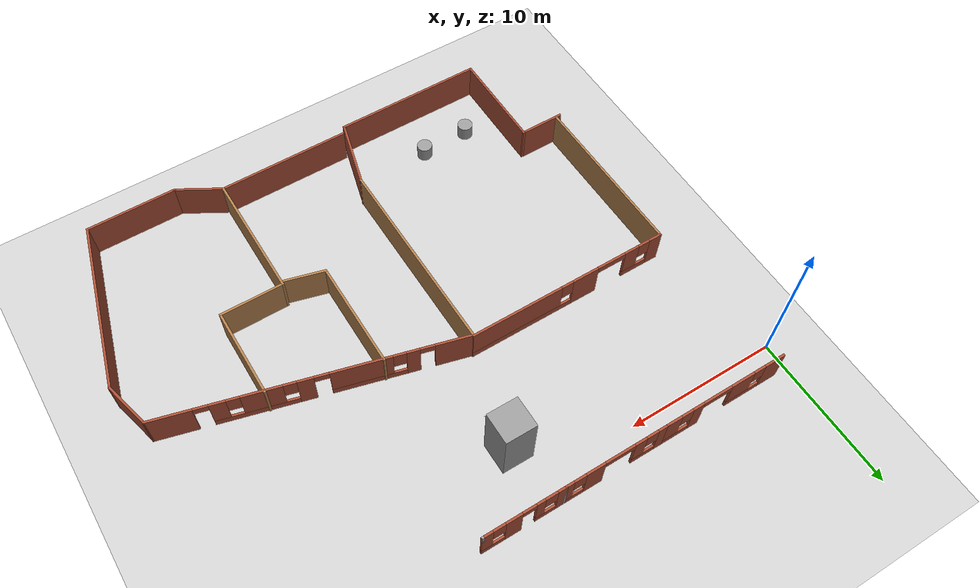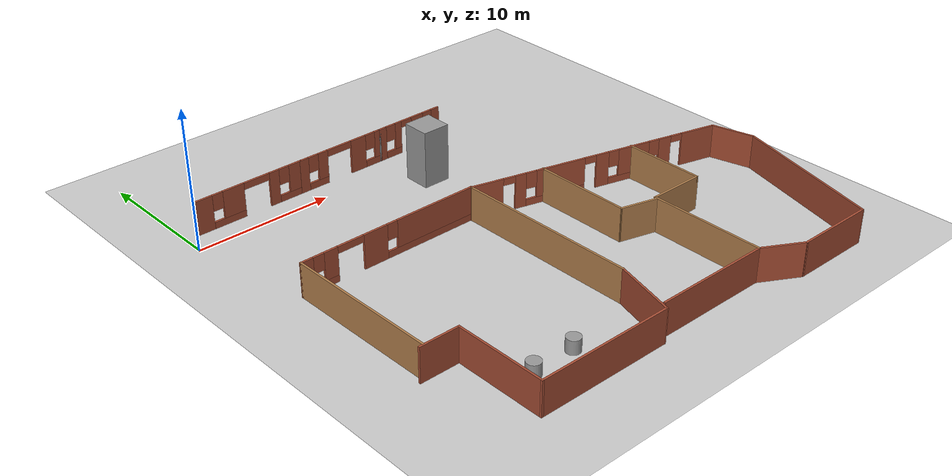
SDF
<sdf version="1.6">
 <world name="default">
  <model name="ground_plane">
   <static>1</static>
   <link name="link">
    <collision name="collision">
     <geometry><plane><normal>0 0 1</normal><size>100 100</size></plane></geometry>
     <surface><friction><ode><mu>100</mu><mu2>50</mu2></ode></friction></surface>
    </collision>
    <visual name="visual">
     <cast_shadows>0</cast_shadows>
     <geometry><plane><normal>0 0 1</normal><size>100 100</size></plane></geometry>
     <material>
      <script><uri>file://media/materials/scripts/gazebo.material</uri><name>Gazebo/Grey</name></script>
     </material>
    </visual>
   </link>
  </model>
  <model name="vital">
   <pose>1.2398 -2.19799 0 0 -0 0</pose>
   <link name="Wall_117">
    <collision name="Wall_117_Collision">
     <geometry><box><size>11.197 0.15 2.5</size></box></geometry>
     <pose>0 0 1.25 0 -0 0</pose>
    </collision>
    <visual name="Wall_117_Visual">
     <pose>0 0 1.25 0 -0 0</pose>
     <geometry><box><size>11.197 0.15 2.5</size></box></geometry>
     <material>
      <script><uri>file://media/materials/scripts/gazebo.material</uri><name>Gazebo/Wood</name></script>
      <ambient>1 1 1 1</ambient>
     </material>
    </visual>
    <pose>0.602983 -12.1831 0 0 0 -1.56111</pose>
   </link>
   <link name="Wall_125">
    <pose>7.34948 -6.60631 0 0 -0 0</pose>
    <visual name="Wall_125_Visual_0">
     <pose>-6.41052 0 1.25 0 -0 0</pose>
     <geometry><box><size>0.928962 0.15 2.5</size></box></geometry>
     <material>
      <script><uri>file://media/materials/scripts/gazebo.material</uri><name>Gazebo/Bricks</name></script>
      <ambient>1 1 1 1</ambient>
     </material>
    </visual>
    <collision name="Wall_125_Collision_0">
     <geometry><box><size>0.928962 0.15 2.5</size></box></geometry>
     <pose>-6.41052 0 1.25 0 -0 0</pose>
    </collision>
    <visual name="Wall_125_Visual_1">
     <pose>-1.17751 0 1.25 0 -0 0</pose>
     <geometry><box><size>1.85483 0.15 2.5</size></box></geometry>
     <material>
      <script><uri>file://media/materials/scripts/gazebo.material</uri><name>Gazebo/Bricks</name></script>
      <ambient>1 1 1 1</ambient>
     </material>
    </visual>
    <collision name="Wall_125_Collision_1">
     <geometry><box><size>1.85483 0.15 2.5</size></box></geometry>
     <pose>-1.17751 0 1.25 0 -0 0</pose>
    </collision>
    <visual name="Wall_125_Visual_2">
     <pose>-5.02548 0 0.25 0 -0 0</pose>
     <geometry><box><size>1.84112 0.15 0.5</size></box></geometry>
     <material>
      <script><uri>file://media/materials/scripts/gazebo.material</uri><name>Gazebo/Bricks</name></script>
      <ambient>1 1 1 1</ambient>
     </material>
    </visual>
    <collision name="Wall_125_Collision_2">
     <geometry><box><size>1.84112 0.15 0.5</size></box></geometry>
     <pose>-5.02548 0 0.25 0 -0 0</pose>
    </collision>
    <visual name="Wall_125_Visual_3">
     <pose>3.31245 0 0.25 0 -0 0</pose>
     <geometry><box><size>7.12509 0.15 0.5</size></box></geometry>
     <material>
      <script><uri>file://media/materials/scripts/gazebo.material</uri><name>Gazebo/Bricks</name></script>
      <ambient>1 1 1 1</ambient>
     </material>
    </visual>
    <collision name="Wall_125_Collision_3">
     <geometry><box><size>7.12509 0.15 0.5</size></box></geometry>
     <pose>3.31245 0 0.25 0 -0 0</pose>
    </collision>
    <visual name="Wall_125_Visual_4">
     <pose>-4.62548 0 1.5 0 -0 0</pose>
     <geometry><box><size>1.04112 0.15 2</size></box></geometry>
     <material>
      <script><uri>file://media/materials/scripts/gazebo.material</uri><name>Gazebo/Bricks</name></script>
      <ambient>1 1 1 1</ambient>
     </material>
    </visual>
    <collision name="Wall_125_Collision_4">
     <geometry><box><size>1.04112 0.15 2</size></box></geometry>
     <pose>-4.62548 0 1.5 0 -0 0</pose>
    </collision>
    <visual name="Wall_125_Visual_5">
     <pose>-4.62548 0 1.5 0 -0 0</pose>
     <geometry><box><size>1.04112 0.15 2</size></box></geometry>
     <material>
      <script><uri>file://media/materials/scripts/gazebo.material</uri><name>Gazebo/Bricks</name></script>
      <ambient>1 1 1 1</ambient>
     </material>
    </visual>
    <collision name="Wall_125_Collision_5">
     <geometry><box><size>1.04112 0.15 2</size></box></geometry>
     <pose>-4.62548 0 1.5 0 -0 0</pose>
    </collision>
    <visual name="Wall_125_Visual_6">
     <pose>3.71245 0 1.5 0 -0 0</pose>
     <geometry><box><size>6.32509 0.15 2</size></box></geometry>
     <material>
      <script><uri>file://media/materials/scripts/gazebo.material</uri><name>Gazebo/Bricks</name></script>
      <ambient>1 1 1 1</ambient>
     </material>
    </visual>
    <collision name="Wall_125_Collision_6">
     <geometry><box><size>6.32509 0.15 2</size></box></geometry>
     <pose>3.71245 0 1.5 0 -0 0</pose>
    </collision>
    <visual name="Wall_125_Visual_7">
     <pose>-5.54604 0 1.9 0 -0 0</pose>
     <geometry><box><size>0.8 0.15 1.2</size></box></geometry>
     <material>
      <script><uri>file://media/materials/scripts/gazebo.material</uri><name>Gazebo/Bricks</name></script>
      <ambient>1 1 1 1</ambient>
     </material>
    </visual>
    <collision name="Wall_125_Collision_7">
     <geometry><box><size>0.8 0.15 1.2</size></box></geometry>
     <pose>-5.54604 0 1.9 0 -0 0</pose>
    </collision>
    <visual name="Wall_125_Visual_8">
     <pose>0.149906 0 1.9 0 -0 0</pose>
     <geometry><box><size>0.8 0.15 1.2</size></box></geometry>
     <material>
      <script><uri>file://media/materials/scripts/gazebo.material</uri><name>Gazebo/Bricks</name></script>
      <ambient>1 1 1 1</ambient>
     </material>
    </visual>
    <collision name="Wall_125_Collision_8">
     <geometry><box><size>0.8 0.15 1.2</size></box></geometry>
     <pose>0.149906 0 1.9 0 -0 0</pose>
    </collision>
    <visual name="Wall_125_Visual_9">
     <pose>-3.10492 0 2.25 0 -0 0</pose>
     <geometry><box><size>2 0.15 0.5</size></box></geometry>
     <material>
      <script><uri>file://media/materials/scripts/gazebo.material</uri><name>Gazebo/Bricks</name></script>
      <ambient>1 1 1 1</ambient>
     </material>
    </visual>
    <collision name="Wall_125_Collision_9">
     <geometry><box><size>2 0.15 0.5</size></box></geometry>
     <pose>-3.10492 0 2.25 0 -0 0</pose>
    </collision>
    <visual name="Wall_125_Visual_10">
     <pose>-3.10492 0 2.25 0 -0 0</pose>
     <geometry><box><size>2 0.15 0.5</size></box></geometry>
     <material>
      <script><uri>file://media/materials/scripts/gazebo.material</uri><name>Gazebo/Bricks</name></script>
      <ambient>1 1 1 1</ambient>
     </material>
    </visual>
    <collision name="Wall_125_Collision_10">
     <geometry><box><size>2 0.15 0.5</size></box></geometry>
     <pose>-3.10492 0 2.25 0 -0 0</pose>
    </collision>
   </link>
   <link name="Wall_126">
    <collision name="Wall_126_Collision">
     <geometry><box><size>13.4469 0.15 2.5</size></box></geometry>
     <pose>0 0 1.25 0 -0 0</pose>
    </collision>
    <visual name="Wall_126_Visual">
     <pose>0 0 1.25 0 -0 0</pose>
     <geometry><box><size>13.4469 0.15 2.5</size></box></geometry>
     <material>
      <script><uri>file://media/materials/scripts/gazebo.material</uri><name>Gazebo/Wood</name></script>
      <ambient>1 1 1 1</ambient>
     </material>
    </visual>
    <pose>14.203 -13.3081 0 0 0 -1.56275</pose>
   </link>
   <link name="Wall_127">
    <collision name="Wall_127_Collision">
     <geometry><box><size>4.75 0.15 2.5</size></box></geometry>
     <pose>0 0 1.25 0 -0 0</pose>
    </collision>
    <visual name="Wall_127_Visual">
     <pose>0 0 1.25 0 -0 0</pose>
     <geometry><box><size>4.75 0.15 2.5</size></box></geometry>
     <material>
      <script><uri>file://media/materials/scripts/gazebo.material</uri><name>Gazebo/Bricks</name></script>
      <ambient>1 1 1 1</ambient>
     </material>
    </visual>
    <pose>13.6612 -22.1779 0 0 0 -1.8326</pose>
   </link>
   <link name="Wall_128">
    <collision name="Wall_128_Collision">
     <geometry><box><size>10 0.15 2.5</size></box></geometry>
     <pose>0 0 1.25 0 -0 0</pose>
    </collision>
    <visual name="Wall_128_Visual">
     <pose>0 0 1.25 0 -0 0</pose>
     <geometry><box><size>10 0.15 2.5</size></box></geometry>
     <material>
      <script><uri>file://media/materials/scripts/gazebo.material</uri><name>Gazebo/Bricks</name></script>
      <ambient>1 1 1 1</ambient>
     </material>
    </visual>
    <pose>8.14092 -24.3996 0 0 -0 3.14159</pose>
   </link>
   <link name="Wall_129">
    <collision name="Wall_129_Collision">
     <geometry><box><size>6.75 0.15 2.5</size></box></geometry>
     <pose>0 0 1.25 0 -0 0</pose>
    </collision>
    <visual name="Wall_129_Visual">
     <pose>0 0 1.25 0 -0 0</pose>
     <geometry><box><size>6.75 0.15 2.5</size></box></geometry>
     <material>
      <script><uri>file://media/materials/scripts/gazebo.material</uri><name>Gazebo/Bricks</name></script>
      <ambient>1 1 1 1</ambient>
     </material>
    </visual>
    <pose>3.21592 -21.0996 0 0 -0 1.5708</pose>
   </link>
   <link name="Wall_130">
    <collision name="Wall_130_Collision">
     <geometry><box><size>3 0.15 2.5</size></box></geometry>
     <pose>0 0 1.25 0 -0 0</pose>
    </collision>
    <visual name="Wall_130_Visual">
     <pose>0 0 1.25 0 -0 0</pose>
     <geometry><box><size>3 0.15 2.5</size></box></geometry>
     <material>
      <script><uri>file://media/materials/scripts/gazebo.material</uri><name>Gazebo/Bricks</name></script>
      <ambient>1 1 1 1</ambient>
     </material>
    </visual>
    <pose>1.79092 -17.7996 0 0 -0 3.14159</pose>
   </link>
   <link name="Wall_132">
    <pose>23.4276 -9.10478 0 0 0 -0.257663</pose>
    <visual name="Wall_132_Visual_0">
     <pose>-8.46456 0 1.25 0 -0 0</pose>
     <geometry><box><size>2.41055 0.15 2.5</size></box></geometry>
     <material>
      <script><uri>file://media/materials/scripts/gazebo.material</uri><name>Gazebo/Bricks</name></script>
      <ambient>1 1 1 1</ambient>
     </material>
    </visual>
    <collision name="Wall_132_Collision_0">
     <geometry><box><size>2.41055 0.15 2.5</size></box></geometry>
     <pose>-8.46456 0 1.25 0 -0 0</pose>
    </collision>
    <visual name="Wall_132_Visual_1">
     <pose>-5.94773 0 1.25 0 -0 0</pose>
     <geometry><box><size>0.823107 0.15 2.5</size></box></geometry>
     <material>
      <script><uri>file://media/materials/scripts/gazebo.material</uri><name>Gazebo/Bricks</name></script>
      <ambient>1 1 1 1</ambient>
     </material>
    </visual>
    <collision name="Wall_132_Collision_1">
     <geometry><box><size>0.823107 0.15 2.5</size></box></geometry>
     <pose>-5.94773 0 1.25 0 -0 0</pose>
    </collision>
    <visual name="Wall_132_Visual_2">
     <pose>0.434489 0 1.25 0 -0 0</pose>
     <geometry><box><size>1.00547 0.15 2.5</size></box></geometry>
     <material>
      <script><uri>file://media/materials/scripts/gazebo.material</uri><name>Gazebo/Bricks</name></script>
      <ambient>1 1 1 1</ambient>
     </material>
    </visual>
    <collision name="Wall_132_Collision_2">
     <geometry><box><size>1.00547 0.15 2.5</size></box></geometry>
     <pose>0.434489 0 1.25 0 -0 0</pose>
    </collision>
    <visual name="Wall_132_Visual_3">
     <pose>8.28604 0 1.25 0 -0 0</pose>
     <geometry><box><size>2.76759 0.15 2.5</size></box></geometry>
     <material>
      <script><uri>file://media/materials/scripts/gazebo.material</uri><name>Gazebo/Bricks</name></script>
      <ambient>1 1 1 1</ambient>
     </material>
    </visual>
    <collision name="Wall_132_Collision_3">
     <geometry><box><size>2.76759 0.15 2.5</size></box></geometry>
     <pose>8.28604 0 1.25 0 -0 0</pose>
    </collision>
    <visual name="Wall_132_Visual_4">
     <pose>-3.25221 0 0.25 0 -0 0</pose>
     <geometry><box><size>4.56793 0.15 0.5</size></box></geometry>
     <material>
      <script><uri>file://media/materials/scripts/gazebo.material</uri><name>Gazebo/Bricks</name></script>
      <ambient>1 1 1 1</ambient>
     </material>
    </visual>
    <collision name="Wall_132_Collision_4">
     <geometry><box><size>4.56793 0.15 0.5</size></box></geometry>
     <pose>-3.25221 0 0.25 0 -0 0</pose>
    </collision>
    <visual name="Wall_132_Visual_5">
     <pose>3.46974 0 0.25 0 -0 0</pose>
     <geometry><box><size>5.06503 0.15 0.5</size></box></geometry>
     <material>
      <script><uri>file://media/materials/scripts/gazebo.material</uri><name>Gazebo/Bricks</name></script>
      <ambient>1 1 1 1</ambient>
     </material>
    </visual>
    <collision name="Wall_132_Collision_5">
     <geometry><box><size>5.06503 0.15 0.5</size></box></geometry>
     <pose>3.46974 0 0.25 0 -0 0</pose>
    </collision>
    <visual name="Wall_132_Visual_6">
     <pose>-2.85221 0 1.5 0 -0 0</pose>
     <geometry><box><size>3.76793 0.15 2</size></box></geometry>
     <material>
      <script><uri>file://media/materials/scripts/gazebo.material</uri><name>Gazebo/Bricks</name></script>
      <ambient>1 1 1 1</ambient>
     </material>
    </visual>
    <collision name="Wall_132_Collision_6">
     <geometry><box><size>3.76793 0.15 2</size></box></geometry>
     <pose>-2.85221 0 1.5 0 -0 0</pose>
    </collision>
    <visual name="Wall_132_Visual_7">
     <pose>-2.85221 0 1.5 0 -0 0</pose>
     <geometry><box><size>3.76793 0.15 2</size></box></geometry>
     <material>
      <script><uri>file://media/materials/scripts/gazebo.material</uri><name>Gazebo/Bricks</name></script>
      <ambient>1 1 1 1</ambient>
     </material>
    </visual>
    <collision name="Wall_132_Collision_7">
     <geometry><box><size>3.76793 0.15 2</size></box></geometry>
     <pose>-2.85221 0 1.5 0 -0 0</pose>
    </collision>
    <visual name="Wall_132_Visual_8">
     <pose>2.97524 0 1.5 0 -0 0</pose>
     <geometry><box><size>2.47604 0.15 2</size></box></geometry>
     <material>
      <script><uri>file://media/materials/scripts/gazebo.material</uri><name>Gazebo/Bricks</name></script>
      <ambient>1 1 1 1</ambient>
     </material>
    </visual>
    <collision name="Wall_132_Collision_8">
     <geometry><box><size>2.47604 0.15 2</size></box></geometry>
     <pose>2.97524 0 1.5 0 -0 0</pose>
    </collision>
    <visual name="Wall_132_Visual_9">
     <pose>5.50776 0 1.5 0 -0 0</pose>
     <geometry><box><size>0.988987 0.15 2</size></box></geometry>
     <material>
      <script><uri>file://media/materials/scripts/gazebo.material</uri><name>Gazebo/Bricks</name></script>
      <ambient>1 1 1 1</ambient>
     </material>
    </visual>
    <collision name="Wall_132_Collision_9">
     <geometry><box><size>0.988987 0.15 2</size></box></geometry>
     <pose>5.50776 0 1.5 0 -0 0</pose>
    </collision>
    <visual name="Wall_132_Visual_10">
     <pose>-5.13618 0 1.9 0 -0 0</pose>
     <geometry><box><size>0.8 0.15 1.2</size></box></geometry>
     <material>
      <script><uri>file://media/materials/scripts/gazebo.material</uri><name>Gazebo/Bricks</name></script>
      <ambient>1 1 1 1</ambient>
     </material>
    </visual>
    <collision name="Wall_132_Collision_10">
     <geometry><box><size>0.8 0.15 1.2</size></box></geometry>
     <pose>-5.13618 0 1.9 0 -0 0</pose>
    </collision>
    <visual name="Wall_132_Visual_11">
     <pose>1.33722 0 1.9 0 -0 0</pose>
     <geometry><box><size>0.8 0.15 1.2</size></box></geometry>
     <material>
      <script><uri>file://media/materials/scripts/gazebo.material</uri><name>Gazebo/Bricks</name></script>
      <ambient>1 1 1 1</ambient>
     </material>
    </visual>
    <collision name="Wall_132_Collision_11">
     <geometry><box><size>0.8 0.15 1.2</size></box></geometry>
     <pose>1.33722 0 1.9 0 -0 0</pose>
    </collision>
    <visual name="Wall_132_Visual_12">
     <pose>4.61326 0 1.9 0 -0 0</pose>
     <geometry><box><size>0.8 0.15 1.2</size></box></geometry>
     <material>
      <script><uri>file://media/materials/scripts/gazebo.material</uri><name>Gazebo/Bricks</name></script>
      <ambient>1 1 1 1</ambient>
     </material>
    </visual>
    <collision name="Wall_132_Collision_12">
     <geometry><box><size>0.8 0.15 1.2</size></box></geometry>
     <pose>4.61326 0 1.9 0 -0 0</pose>
    </collision>
    <visual name="Wall_132_Visual_13">
     <pose>-6.80929 0 2.25 0 -0 0</pose>
     <geometry><box><size>0.9 0.15 0.5</size></box></geometry>
     <material>
      <script><uri>file://media/materials/scripts/gazebo.material</uri><name>Gazebo/Bricks</name></script>
      <ambient>1 1 1 1</ambient>
     </material>
    </visual>
    <collision name="Wall_132_Collision_13">
     <geometry><box><size>0.9 0.15 0.5</size></box></geometry>
     <pose>-6.80929 0 2.25 0 -0 0</pose>
    </collision>
    <visual name="Wall_132_Visual_14">
     <pose>-0.518245 0 2.25 0 -0 0</pose>
     <geometry><box><size>0.9 0.15 0.5</size></box></geometry>
     <material>
      <script><uri>file://media/materials/scripts/gazebo.material</uri><name>Gazebo/Bricks</name></script>
      <ambient>1 1 1 1</ambient>
     </material>
    </visual>
    <collision name="Wall_132_Collision_14">
     <geometry><box><size>0.9 0.15 0.5</size></box></geometry>
     <pose>-0.518245 0 2.25 0 -0 0</pose>
    </collision>
    <visual name="Wall_132_Visual_15">
     <pose>-0.518245 0 2.25 0 -0 0</pose>
     <geometry><box><size>0.9 0.15 0.5</size></box></geometry>
     <material>
      <script><uri>file://media/materials/scripts/gazebo.material</uri><name>Gazebo/Bricks</name></script>
      <ambient>1 1 1 1</ambient>
     </material>
    </visual>
    <collision name="Wall_132_Collision_15">
     <geometry><box><size>0.9 0.15 0.5</size></box></geometry>
     <pose>-0.518245 0 2.25 0 -0 0</pose>
    </collision>
    <visual name="Wall_132_Visual_16">
     <pose>6.45225 0 2.25 0 -0 0</pose>
     <geometry><box><size>0.9 0.15 0.5</size></box></geometry>
     <material>
      <script><uri>file://media/materials/scripts/gazebo.material</uri><name>Gazebo/Bricks</name></script>
      <ambient>1 1 1 1</ambient>
     </material>
    </visual>
    <collision name="Wall_132_Collision_16">
     <geometry><box><size>0.9 0.15 0.5</size></box></geometry>
     <pose>6.45225 0 2.25 0 -0 0</pose>
    </collision>
   </link>
   <link name="Wall_133">
    <collision name="Wall_133_Collision">
     <geometry><box><size>3.25 0.15 2.5</size></box></geometry>
     <pose>0 0 1.25 0 -0 0</pose>
    </collision>
    <visual name="Wall_133_Visual">
     <pose>0 0 1.25 0 -0 0</pose>
     <geometry><box><size>3.25 0.15 2.5</size></box></geometry>
     <material>
      <script><uri>file://media/materials/scripts/gazebo.material</uri><name>Gazebo/Bricks</name></script>
      <ambient>1 1 1 1</ambient>
     </material>
    </visual>
    <pose>33.1068 -13.0469 0 0 0 -1.309</pose>
   </link>
   <link name="Wall_134">
    <collision name="Wall_134_Collision">
     <geometry><box><size>11.5 0.15 2.5</size></box></geometry>
     <pose>0 0 1.25 0 -0 0</pose>
    </collision>
    <visual name="Wall_134_Visual">
     <pose>0 0 1.25 0 -0 0</pose>
     <geometry><box><size>11.5 0.15 2.5</size></box></geometry>
     <material>
      <script><uri>file://media/materials/scripts/gazebo.material</uri><name>Gazebo/Bricks</name></script>
      <ambient>1 1 1 1</ambient>
     </material>
    </visual>
    <pose>32.0392 -20.0257 0 0 0 -1.8326</pose>
   </link>
   <link name="Wall_135">
    <collision name="Wall_135_Collision">
     <geometry><box><size>6 0.15 2.5</size></box></geometry>
     <pose>0 0 1.25 0 -0 0</pose>
    </collision>
    <visual name="Wall_135_Visual">
     <pose>0 0 1.25 0 -0 0</pose>
     <geometry><box><size>6 0.15 2.5</size></box></geometry>
     <material>
      <script><uri>file://media/materials/scripts/gazebo.material</uri><name>Gazebo/Bricks</name></script>
      <ambient>1 1 1 1</ambient>
     </material>
    </visual>
    <pose>27.6454 -25.5074 0 0 -0 3.14159</pose>
   </link>
   <link name="Wall_136">
    <collision name="Wall_136_Collision">
     <geometry><box><size>3.25 0.15 2.5</size></box></geometry>
     <pose>0 0 1.25 0 -0 0</pose>
    </collision>
    <visual name="Wall_136_Visual">
     <pose>0 0 1.25 0 -0 0</pose>
     <geometry><box><size>3.25 0.15 2.5</size></box></geometry>
     <material>
      <script><uri>file://media/materials/scripts/gazebo.material</uri><name>Gazebo/Bricks</name></script>
      <ambient>1 1 1 1</ambient>
     </material>
    </visual>
    <pose>23.3781 -24.7324 0 0 -0 2.61799</pose>
   </link>
   <link name="Wall_137">
    <collision name="Wall_137_Collision">
     <geometry><box><size>8.5 0.15 2.5</size></box></geometry>
     <pose>0 0 1.25 0 -0 0</pose>
    </collision>
    <visual name="Wall_137_Visual">
     <pose>0 0 1.25 0 -0 0</pose>
     <geometry><box><size>8.5 0.15 2.5</size></box></geometry>
     <material>
      <script><uri>file://media/materials/scripts/gazebo.material</uri><name>Gazebo/Wood</name></script>
      <ambient>1 1 1 1</ambient>
     </material>
    </visual>
    <pose>22.0357 -19.7824 0 0 -0 1.5708</pose>
   </link>
   <link name="Wall_138">
    <collision name="Wall_138_Collision">
     <geometry><box><size>4.25 0.15 2.5</size></box></geometry>
     <pose>0 0 1.25 0 -0 0</pose>
    </collision>
    <visual name="Wall_138_Visual">
     <pose>0 0 1.25 0 -0 0</pose>
     <geometry><box><size>4.25 0.15 2.5</size></box></geometry>
     <material>
      <script><uri>file://media/materials/scripts/gazebo.material</uri><name>Gazebo/Wood</name></script>
      <ambient>1 1 1 1</ambient>
     </material>
    </visual>
    <pose>24.0857 -15.6074 0 0 -0 0</pose>
   </link>
   <link name="Wall_139">
    <collision name="Wall_139_Collision">
     <geometry><box><size>6 0.15 2.5</size></box></geometry>
     <pose>0 0 1.25 0 -0 0</pose>
    </collision>
    <visual name="Wall_139_Visual">
     <pose>0 0 1.25 0 -0 0</pose>
     <geometry><box><size>6 0.15 2.5</size></box></geometry>
     <material>
      <script><uri>file://media/materials/scripts/gazebo.material</uri><name>Gazebo/Wood</name></script>
      <ambient>1 1 1 1</ambient>
     </material>
    </visual>
    <pose>26.1357 -12.6824 0 0 -0 1.5708</pose>
   </link>
   <link name="Wall_141">
    <collision name="Wall_141_Collision">
     <geometry><box><size>7.25 0.15 2.5</size></box></geometry>
     <pose>0 0 1.25 0 -0 0</pose>
    </collision>
    <visual name="Wall_141_Visual">
     <pose>0 0 1.25 0 -0 0</pose>
     <geometry><box><size>7.25 0.15 2.5</size></box></geometry>
     <material>
      <script><uri>file://media/materials/scripts/gazebo.material</uri><name>Gazebo/Wood</name></script>
      <ambient>1 1 1 1</ambient>
     </material>
    </visual>
    <pose>19.3863 -11.5458 0 0 0 -1.5708</pose>
   </link>
   <link name="Wall_142">
    <collision name="Wall_142_Collision">
     <geometry><box><size>2.75 0.15 2.5</size></box></geometry>
     <pose>0 0 1.25 0 -0 0</pose>
    </collision>
    <visual name="Wall_142_Visual">
     <pose>0 0 1.25 0 -0 0</pose>
     <geometry><box><size>2.75 0.15 2.5</size></box></geometry>
     <material>
      <script><uri>file://media/materials/scripts/gazebo.material</uri><name>Gazebo/Wood</name></script>
      <ambient>1 1 1 1</ambient>
     </material>
    </visual>
    <pose>20.642 -15.4323 0 0 0 -0.261799</pose>
   </link>
   <link name="Wall_144">
    <collision name="Wall_144_Collision">
     <geometry><box><size>8.75 0.15 2.5</size></box></geometry>
     <pose>0 0 1.25 0 -0 0</pose>
    </collision>
    <visual name="Wall_144_Visual">
     <pose>0 0 1.25 0 -0 0</pose>
     <geometry><box><size>8.75 0.15 2.5</size></box></geometry>
     <material>
      <script><uri>file://media/materials/scripts/gazebo.material</uri><name>Gazebo/Bricks</name></script>
      <ambient>1 1 1 1</ambient>
     </material>
    </visual>
    <pose>17.7357 -23.9574 0 0 -0 3.14159</pose>
   </link>
   <link name="Wall_64">
    <pose>3.81101 3.83144 0 0 -0 0</pose>
    <visual name="Wall_64_Visual_0">
     <pose>-3.53221 0 1.25 0 -0 0</pose>
     <geometry><box><size>1.43558 0.15 2.5</size></box></geometry>
     <material>
      <script><uri>file://media/materials/scripts/gazebo.material</uri><name>Gazebo/Bricks</name></script>
      <ambient>1 1 1 1</ambient>
     </material>
    </visual>
    <collision name="Wall_64_Collision_0">
     <geometry><box><size>1.43558 0.15 2.5</size></box></geometry>
     <pose>-3.53221 0 1.25 0 -0 0</pose>
    </collision>
    <visual name="Wall_64_Visual_1">
     <pose>2.011 0 1.25 0 -0 0</pose>
     <geometry><box><size>0.764597 0.15 2.5</size></box></geometry>
     <material>
      <script><uri>file://media/materials/scripts/gazebo.material</uri><name>Gazebo/Bricks</name></script>
      <ambient>1 1 1 1</ambient>
     </material>
    </visual>
    <collision name="Wall_64_Collision_1">
     <geometry><box><size>0.764597 0.15 2.5</size></box></geometry>
     <pose>2.011 0 1.25 0 -0 0</pose>
    </collision>
    <visual name="Wall_64_Visual_2">
     <pose>-1.59286 0 0.25 0 -0 0</pose>
     <geometry><box><size>2.44312 0.15 0.5</size></box></geometry>
     <material>
      <script><uri>file://media/materials/scripts/gazebo.material</uri><name>Gazebo/Bricks</name></script>
      <ambient>1 1 1 1</ambient>
     </material>
    </visual>
    <collision name="Wall_64_Collision_2">
     <geometry><box><size>2.44312 0.15 0.5</size></box></geometry>
     <pose>-1.59286 0 0.25 0 -0 0</pose>
    </collision>
    <visual name="Wall_64_Visual_3">
     <pose>3.32165 0 0.25 0 -0 0</pose>
     <geometry><box><size>1.8567 0.15 0.5</size></box></geometry>
     <material>
      <script><uri>file://media/materials/scripts/gazebo.material</uri><name>Gazebo/Bricks</name></script>
      <ambient>1 1 1 1</ambient>
     </material>
    </visual>
    <collision name="Wall_64_Collision_3">
     <geometry><box><size>1.8567 0.15 0.5</size></box></geometry>
     <pose>3.32165 0 0.25 0 -0 0</pose>
    </collision>
    <visual name="Wall_64_Visual_4">
     <pose>-1.19286 0 1.5 0 -0 0</pose>
     <geometry><box><size>1.64312 0.15 2</size></box></geometry>
     <material>
      <script><uri>file://media/materials/scripts/gazebo.material</uri><name>Gazebo/Bricks</name></script>
      <ambient>1 1 1 1</ambient>
     </material>
    </visual>
    <collision name="Wall_64_Collision_4">
     <geometry><box><size>1.64312 0.15 2</size></box></geometry>
     <pose>-1.19286 0 1.5 0 -0 0</pose>
    </collision>
    <visual name="Wall_64_Visual_5">
     <pose>-1.19286 0 1.5 0 -0 0</pose>
     <geometry><box><size>1.64312 0.15 2</size></box></geometry>
     <material>
      <script><uri>file://media/materials/scripts/gazebo.material</uri><name>Gazebo/Bricks</name></script>
      <ambient>1 1 1 1</ambient>
     </material>
    </visual>
    <collision name="Wall_64_Collision_5">
     <geometry><box><size>1.64312 0.15 2</size></box></geometry>
     <pose>-1.19286 0 1.5 0 -0 0</pose>
    </collision>
    <visual name="Wall_64_Visual_6">
     <pose>3.72165 0 1.5 0 -0 0</pose>
     <geometry><box><size>1.0567 0.15 2</size></box></geometry>
     <material>
      <script><uri>file://media/materials/scripts/gazebo.material</uri><name>Gazebo/Bricks</name></script>
      <ambient>1 1 1 1</ambient>
     </material>
    </visual>
    <collision name="Wall_64_Collision_6">
     <geometry><box><size>1.0567 0.15 2</size></box></geometry>
     <pose>3.72165 0 1.5 0 -0 0</pose>
    </collision>
    <visual name="Wall_64_Visual_7">
     <pose>-2.41442 0 1.9 0 -0 0</pose>
     <geometry><box><size>0.8 0.15 1.2</size></box></geometry>
     <material>
      <script><uri>file://media/materials/scripts/gazebo.material</uri><name>Gazebo/Bricks</name></script>
      <ambient>1 1 1 1</ambient>
     </material>
    </visual>
    <collision name="Wall_64_Collision_7">
     <geometry><box><size>0.8 0.15 1.2</size></box></geometry>
     <pose>-2.41442 0 1.9 0 -0 0</pose>
    </collision>
    <visual name="Wall_64_Visual_8">
     <pose>2.7933 0 1.9 0 -0 0</pose>
     <geometry><box><size>0.8 0.15 1.2</size></box></geometry>
     <material>
      <script><uri>file://media/materials/scripts/gazebo.material</uri><name>Gazebo/Bricks</name></script>
      <ambient>1 1 1 1</ambient>
     </material>
    </visual>
    <collision name="Wall_64_Collision_8">
     <geometry><box><size>0.8 0.15 1.2</size></box></geometry>
     <pose>2.7933 0 1.9 0 -0 0</pose>
    </collision>
    <visual name="Wall_64_Visual_9">
     <pose>0.6287 0 2.25 0 -0 0</pose>
     <geometry><box><size>2 0.15 0.5</size></box></geometry>
     <material>
      <script><uri>file://media/materials/scripts/gazebo.material</uri><name>Gazebo/Bricks</name></script>
      <ambient>1 1 1 1</ambient>
     </material>
    </visual>
    <collision name="Wall_64_Collision_9">
     <geometry><box><size>2 0.15 0.5</size></box></geometry>
     <pose>0.6287 0 2.25 0 -0 0</pose>
    </collision>
    <visual name="Wall_64_Visual_10">
     <pose>0.6287 0 2.25 0 -0 0</pose>
     <geometry><box><size>2 0.15 0.5</size></box></geometry>
     <material>
      <script><uri>file://media/materials/scripts/gazebo.material</uri><name>Gazebo/Bricks</name></script>
      <ambient>1 1 1 1</ambient>
     </material>
    </visual>
    <collision name="Wall_64_Collision_10">
     <geometry><box><size>2 0.15 0.5</size></box></geometry>
     <pose>0.6287 0 2.25 0 -0 0</pose>
    </collision>
   </link>
   <link name="Wall_72">
    <pose>11.411 3.83144 0 0 -0 0</pose>
    <visual name="Wall_72_Visual_0">
     <pose>-3.13279 0 1.25 0 -0 0</pose>
     <geometry><box><size>0.734415 0.15 2.5</size></box></geometry>
     <material>
      <script><uri>file://media/materials/scripts/gazebo.material</uri><name>Gazebo/Bricks</name></script>
      <ambient>1 1 1 1</ambient>
     </material>
    </visual>
    <collision name="Wall_72_Collision_0">
     <geometry><box><size>0.734415 0.15 2.5</size></box></geometry>
     <pose>-3.13279 0 1.25 0 -0 0</pose>
    </collision>
    <visual name="Wall_72_Visual_1">
     <pose>1.47853 0 1.25 0 -0 0</pose>
     <geometry><box><size>1.27624 0.15 2.5</size></box></geometry>
     <material>
      <script><uri>file://media/materials/scripts/gazebo.material</uri><name>Gazebo/Bricks</name></script>
      <ambient>1 1 1 1</ambient>
     </material>
    </visual>
    <collision name="Wall_72_Collision_1">
     <geometry><box><size>1.27624 0.15 2.5</size></box></geometry>
     <pose>1.47853 0 1.25 0 -0 0</pose>
    </collision>
    <visual name="Wall_72_Visual_2">
     <pose>-1.96259 0 0.25 0 -0 0</pose>
     <geometry><box><size>1.606 0.15 0.5</size></box></geometry>
     <material>
      <script><uri>file://media/materials/scripts/gazebo.material</uri><name>Gazebo/Bricks</name></script>
      <ambient>1 1 1 1</ambient>
     </material>
    </visual>
    <collision name="Wall_72_Collision_2">
     <geometry><box><size>1.606 0.15 0.5</size></box></geometry>
     <pose>-1.96259 0 0.25 0 -0 0</pose>
    </collision>
    <visual name="Wall_72_Visual_3">
     <pose>2.80833 0 0.25 0 -0 0</pose>
     <geometry><box><size>1.38335 0.15 0.5</size></box></geometry>
     <material>
      <script><uri>file://media/materials/scripts/gazebo.material</uri><name>Gazebo/Bricks</name></script>
      <ambient>1 1 1 1</ambient>
     </material>
    </visual>
    <collision name="Wall_72_Collision_3">
     <geometry><box><size>1.38335 0.15 0.5</size></box></geometry>
     <pose>2.80833 0 0.25 0 -0 0</pose>
    </collision>
    <visual name="Wall_72_Visual_4">
     <pose>-1.56259 0 1.5 0 -0 0</pose>
     <geometry><box><size>0.805997 0.15 2</size></box></geometry>
     <material>
      <script><uri>file://media/materials/scripts/gazebo.material</uri><name>Gazebo/Bricks</name></script>
      <ambient>1 1 1 1</ambient>
     </material>
    </visual>
    <collision name="Wall_72_Collision_4">
     <geometry><box><size>0.805997 0.15 2</size></box></geometry>
     <pose>-1.56259 0 1.5 0 -0 0</pose>
    </collision>
    <visual name="Wall_72_Visual_5">
     <pose>-1.56259 0 1.5 0 -0 0</pose>
     <geometry><box><size>0.805997 0.15 2</size></box></geometry>
     <material>
      <script><uri>file://media/materials/scripts/gazebo.material</uri><name>Gazebo/Bricks</name></script>
      <ambient>1 1 1 1</ambient>
     </material>
    </visual>
    <collision name="Wall_72_Collision_5">
     <geometry><box><size>0.805997 0.15 2</size></box></geometry>
     <pose>-1.56259 0 1.5 0 -0 0</pose>
    </collision>
    <visual name="Wall_72_Visual_6">
     <pose>3.20833 0 1.5 0 -0 0</pose>
     <geometry><box><size>0.583349 0.15 2</size></box></geometry>
     <material>
      <script><uri>file://media/materials/scripts/gazebo.material</uri><name>Gazebo/Bricks</name></script>
      <ambient>1 1 1 1</ambient>
     </material>
    </visual>
    <collision name="Wall_72_Collision_6">
     <geometry><box><size>0.583349 0.15 2</size></box></geometry>
     <pose>3.20833 0 1.5 0 -0 0</pose>
    </collision>
    <visual name="Wall_72_Visual_7">
     <pose>-2.36558 0 1.9 0 -0 0</pose>
     <geometry><box><size>0.8 0.15 1.2</size></box></geometry>
     <material>
      <script><uri>file://media/materials/scripts/gazebo.material</uri><name>Gazebo/Bricks</name></script>
      <ambient>1 1 1 1</ambient>
     </material>
    </visual>
    <collision name="Wall_72_Collision_7">
     <geometry><box><size>0.8 0.15 1.2</size></box></geometry>
     <pose>-2.36558 0 1.9 0 -0 0</pose>
    </collision>
    <visual name="Wall_72_Visual_8">
     <pose>2.51665 0 1.9 0 -0 0</pose>
     <geometry><box><size>0.8 0.15 1.2</size></box></geometry>
     <material>
      <script><uri>file://media/materials/scripts/gazebo.material</uri><name>Gazebo/Bricks</name></script>
      <ambient>1 1 1 1</ambient>
     </material>
    </visual>
    <collision name="Wall_72_Collision_8">
     <geometry><box><size>0.8 0.15 1.2</size></box></geometry>
     <pose>2.51665 0 1.9 0 -0 0</pose>
    </collision>
    <visual name="Wall_72_Visual_9">
     <pose>-0.159588 0 2.25 0 -0 0</pose>
     <geometry><box><size>2 0.15 0.5</size></box></geometry>
     <material>
      <script><uri>file://media/materials/scripts/gazebo.material</uri><name>Gazebo/Bricks</name></script>
      <ambient>1 1 1 1</ambient>
     </material>
    </visual>
    <collision name="Wall_72_Collision_9">
     <geometry><box><size>2 0.15 0.5</size></box></geometry>
     <pose>-0.159588 0 2.25 0 -0 0</pose>
    </collision>
    <visual name="Wall_72_Visual_10">
     <pose>-0.159588 0 2.25 0 -0 0</pose>
     <geometry><box><size>2 0.15 0.5</size></box></geometry>
     <material>
      <script><uri>file://media/materials/scripts/gazebo.material</uri><name>Gazebo/Bricks</name></script>
      <ambient>1 1 1 1</ambient>
     </material>
    </visual>
    <collision name="Wall_72_Collision_10">
     <geometry><box><size>2 0.15 0.5</size></box></geometry>
     <pose>-0.159588 0 2.25 0 -0 0</pose>
    </collision>
   </link>
   <link name="Wall_73">
    <collision name="Wall_73_Collision">
     <geometry><box><size>0.15 0.15 2.5</size></box></geometry>
     <pose>0 0 1.25 0 -0 0</pose>
    </collision>
    <visual name="Wall_73_Visual">
     <pose>0 0 1.25 0 -0 0</pose>
     <geometry><box><size>0.15 0.15 2.5</size></box></geometry>
     <material>
      <script><uri>file://media/materials/scripts/gazebo.material</uri><name>Gazebo/Grey</name></script>
      <ambient>1 1 1 1</ambient>
     </material>
    </visual>
    <pose>14.836 3.83144 0 0 -0 0</pose>
   </link>
   <link name="Wall_80">
    <pose>17.511 3.83144 0 0 -0 0</pose>
    <visual name="Wall_80_Visual_0">
     <pose>-2.43091 0 1.25 0 -0 0</pose>
     <geometry><box><size>0.638177 0.15 2.5</size></box></geometry>
     <material>
      <script><uri>file://media/materials/scripts/gazebo.material</uri><name>Gazebo/Bricks</name></script>
      <ambient>1 1 1 1</ambient>
     </material>
    </visual>
    <collision name="Wall_80_Collision_0">
     <geometry><box><size>0.638177 0.15 2.5</size></box></geometry>
     <pose>-2.43091 0 1.25 0 -0 0</pose>
    </collision>
    <visual name="Wall_80_Visual_1">
     <pose>0.691495 0 1.25 0 -0 0</pose>
     <geometry><box><size>1.06575 0.15 2.5</size></box></geometry>
     <material>
      <script><uri>file://media/materials/scripts/gazebo.material</uri><name>Gazebo/Bricks</name></script>
      <ambient>1 1 1 1</ambient>
     </material>
    </visual>
    <collision name="Wall_80_Collision_1">
     <geometry><box><size>1.06575 0.15 2.5</size></box></geometry>
     <pose>0.691495 0 1.25 0 -0 0</pose>
    </collision>
    <visual name="Wall_80_Visual_2">
     <pose>-1.4266 0 0.25 0 -0 0</pose>
     <geometry><box><size>1.37044 0.15 0.5</size></box></geometry>
     <material>
      <script><uri>file://media/materials/scripts/gazebo.material</uri><name>Gazebo/Bricks</name></script>
      <ambient>1 1 1 1</ambient>
     </material>
    </visual>
    <collision name="Wall_80_Collision_2">
     <geometry><box><size>1.37044 0.15 0.5</size></box></geometry>
     <pose>-1.4266 0 0.25 0 -0 0</pose>
    </collision>
    <visual name="Wall_80_Visual_3">
     <pose>1.98719 0 0.25 0 -0 0</pose>
     <geometry><box><size>1.52563 0.15 0.5</size></box></geometry>
     <material>
      <script><uri>file://media/materials/scripts/gazebo.material</uri><name>Gazebo/Bricks</name></script>
      <ambient>1 1 1 1</ambient>
     </material>
    </visual>
    <collision name="Wall_80_Collision_3">
     <geometry><box><size>1.52563 0.15 0.5</size></box></geometry>
     <pose>1.98719 0 0.25 0 -0 0</pose>
    </collision>
    <visual name="Wall_80_Visual_4">
     <pose>-1.0266 0 1.5 0 -0 0</pose>
     <geometry><box><size>0.570441 0.15 2</size></box></geometry>
     <material>
      <script><uri>file://media/materials/scripts/gazebo.material</uri><name>Gazebo/Bricks</name></script>
      <ambient>1 1 1 1</ambient>
     </material>
    </visual>
    <collision name="Wall_80_Collision_4">
     <geometry><box><size>0.570441 0.15 2</size></box></geometry>
     <pose>-1.0266 0 1.5 0 -0 0</pose>
    </collision>
    <visual name="Wall_80_Visual_5">
     <pose>-1.0266 0 1.5 0 -0 0</pose>
     <geometry><box><size>0.570441 0.15 2</size></box></geometry>
     <material>
      <script><uri>file://media/materials/scripts/gazebo.material</uri><name>Gazebo/Bricks</name></script>
      <ambient>1 1 1 1</ambient>
     </material>
    </visual>
    <collision name="Wall_80_Collision_5">
     <geometry><box><size>0.570441 0.15 2</size></box></geometry>
     <pose>-1.0266 0 1.5 0 -0 0</pose>
    </collision>
    <visual name="Wall_80_Visual_6">
     <pose>2.38719 0 1.5 0 -0 0</pose>
     <geometry><box><size>0.725628 0.15 2</size></box></geometry>
     <material>
      <script><uri>file://media/materials/scripts/gazebo.material</uri><name>Gazebo/Bricks</name></script>
      <ambient>1 1 1 1</ambient>
     </material>
    </visual>
    <collision name="Wall_80_Collision_6">
     <geometry><box><size>0.725628 0.15 2</size></box></geometry>
     <pose>2.38719 0 1.5 0 -0 0</pose>
    </collision>
    <visual name="Wall_80_Visual_7">
     <pose>-1.71182 0 1.9 0 -0 0</pose>
     <geometry><box><size>0.8 0.15 1.2</size></box></geometry>
     <material>
      <script><uri>file://media/materials/scripts/gazebo.material</uri><name>Gazebo/Bricks</name></script>
      <ambient>1 1 1 1</ambient>
     </material>
    </visual>
    <collision name="Wall_80_Collision_7">
     <geometry><box><size>0.8 0.15 1.2</size></box></geometry>
     <pose>-1.71182 0 1.9 0 -0 0</pose>
    </collision>
    <visual name="Wall_80_Visual_8">
     <pose>1.62437 0 1.9 0 -0 0</pose>
     <geometry><box><size>0.8 0.15 1.2</size></box></geometry>
     <material>
      <script><uri>file://media/materials/scripts/gazebo.material</uri><name>Gazebo/Bricks</name></script>
      <ambient>1 1 1 1</ambient>
     </material>
    </visual>
    <collision name="Wall_80_Collision_8">
     <geometry><box><size>0.8 0.15 1.2</size></box></geometry>
     <pose>1.62437 0 1.9 0 -0 0</pose>
    </collision>
    <visual name="Wall_80_Visual_9">
     <pose>-0.291382 0 2.25 0 -0 0</pose>
     <geometry><box><size>0.9 0.15 0.5</size></box></geometry>
     <material>
      <script><uri>file://media/materials/scripts/gazebo.material</uri><name>Gazebo/Bricks</name></script>
      <ambient>1 1 1 1</ambient>
     </material>
    </visual>
    <collision name="Wall_80_Collision_9">
     <geometry><box><size>0.9 0.15 0.5</size></box></geometry>
     <pose>-0.291382 0 2.25 0 -0 0</pose>
    </collision>
    <visual name="Wall_80_Visual_10">
     <pose>-0.291382 0 2.25 0 -0 0</pose>
     <geometry><box><size>0.9 0.15 0.5</size></box></geometry>
     <material>
      <script><uri>file://media/materials/scripts/gazebo.material</uri><name>Gazebo/Bricks</name></script>
      <ambient>1 1 1 1</ambient>
     </material>
    </visual>
    <collision name="Wall_80_Collision_10">
     <geometry><box><size>0.9 0.15 0.5</size></box></geometry>
     <pose>-0.291382 0 2.25 0 -0 0</pose>
    </collision>
   </link>
   <link name="Wall_81">
    <collision name="Wall_81_Collision">
     <geometry><box><size>0.15 0.15 2.5</size></box></geometry>
     <pose>0 0 1.25 0 -0 0</pose>
    </collision>
    <visual name="Wall_81_Visual">
     <pose>0 0 1.25 0 -0 0</pose>
     <geometry><box><size>0.15 0.15 2.5</size></box></geometry>
     <material>
      <script><uri>file://media/materials/scripts/gazebo.material</uri><name>Gazebo/Grey</name></script>
      <ambient>1 1 1 1</ambient>
     </material>
    </visual>
    <pose>20.186 3.83144 0 0 -0 0</pose>
   </link>
   <static>1</static>
  </model>
  <model name="unit_cylinder_0">
   <pose>6.71576 -23.6627 0.499991 0 -0 0</pose>
   <link name="link">
    <inertial>
     <mass>1</mass>
     <inertia><ixx>0.145833</ixx><ixy>0</ixy><ixz>0</ixz><iyy>0.145833</iyy><iyz>0</iyz><izz>0.125</izz></inertia>
    </inertial>
    <collision name="collision">
     <geometry><cylinder><radius>0.5</radius><length>1</length></cylinder></geometry>
    </collision>
    <visual name="visual">
     <geometry><cylinder><radius>0.5</radius><length>1</length></cylinder></geometry>
     <material>
      <script><name>Gazebo/Grey</name><uri>file://media/materials/scripts/gazebo.material</uri></script>
     </material>
    </visual>
   </link>
  </model>
  <model name="unit_cylinder_1">
   <pose>9.97672 -23.553 0.499993 0 -0 0</pose>
   <link name="link">
    <inertial>
     <mass>1</mass>
     <inertia><ixx>0.145833</ixx><ixy>0</ixy><ixz>0</ixz><iyy>0.145833</iyy><iyz>0</iyz><izz>0.125</izz></inertia>
    </inertial>
    <collision name="collision">
     <geometry><cylinder><radius>0.5</radius><length>1</length></cylinder></geometry>
    </collision>
    <visual name="visual">
     <geometry><cylinder><radius>0.5</radius><length>1</length></cylinder></geometry>
     <material>
      <script><name>Gazebo/Grey</name><uri>file://media/materials/scripts/gazebo.material</uri></script>
     </material>
    </visual>
   </link>
  </model>
  <model name="unit_box_0">
   <pose>16.9663 -5.08603 0.001613 -1e-06 9e-06 8e-05</pose>
   <link name="link">
    <inertial>
     <mass>1</mass>
     <inertia>
      <ixx>0.166667</ixx>
      <ixy>0</ixy>
      <ixz>0</ixz>
      <iyy>0.166667</iyy>
      <iyz>0</iyz>
      <izz>0.166667</izz>
     </inertia>
    </inertial>
    <collision name="collision">
     <geometry><box><size>0.0274643 0.0298924 0.000767729</size></box></geometry>
    </collision>
    <visual name="visual">
     <geometry><box><size>0.0274643 0.0298924 0.000767729</size></box></geometry>
     <material>
      <script><name>Gazebo/Grey</name><uri>file://media/materials/scripts/gazebo.material</uri></script>
     </material>
    </visual>
   </link>
  </model>
  <model name="unit_box_0_clone">
   <pose>16.9407 -2.55744 2.09762 0 1e-06 -0.002573</pose>
   <link name="link">
    <inertial>
     <mass>1</mass>
     <inertia>
      <ixx>0.166667</ixx>
      <ixy>0</ixy>
      <ixz>0</ixz>
      <iyy>0.166667</iyy>
      <iyz>0</iyz>
      <izz>0.166667</izz>
     </inertia>
    </inertial>
    <collision name="collision"><geometry><box><size>2.05233 2.01785 4.19524</size></box></geometry></collision>
    <visual name="visual">
     <geometry><box><size>2.05233 2.01785 4.19524</size></box></geometry>
     <material>
      <script><name>Gazebo/Grey</name><uri>file://media/materials/scripts/gazebo.material</uri></script>
     </material>
    </visual>
   </link>
  </model>
 </world>
</sdf>
